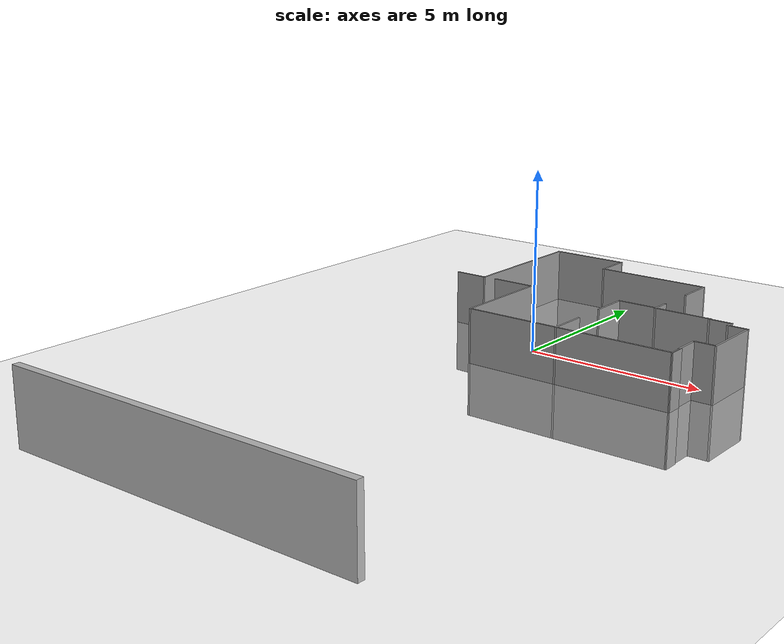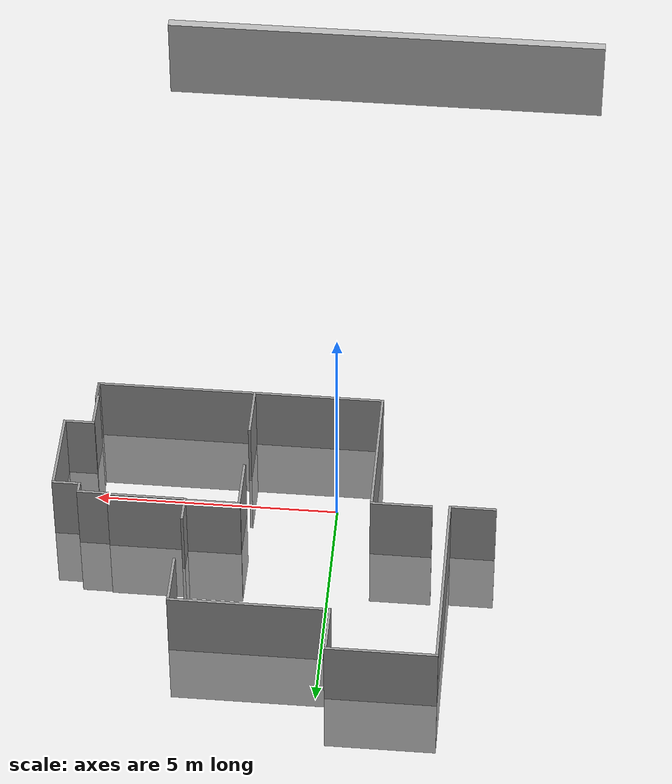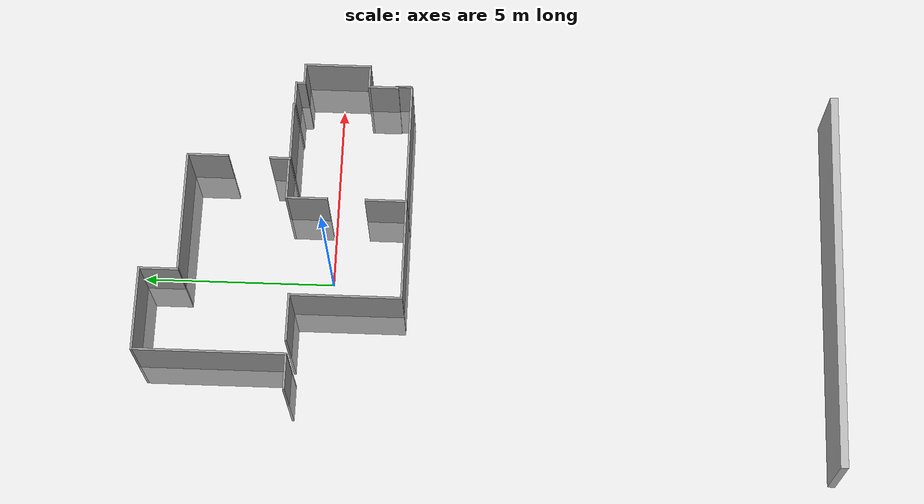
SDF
<sdf version="1.4">
 <world name="default">
  <physics type="ode">
   <gravity>0 0 -9.81</gravity>
   <ode>
    <solver><type>quick</type><iters>20</iters><sor>1</sor></solver>
    <constraints>
     <cfm>0</cfm>
     <erp>0.2</erp>
     <contact_max_correcting_vel>100</contact_max_correcting_vel>
     <contact_surface_layer>0</contact_surface_layer>
    </constraints>
   </ode>
   <real_time_update_rate>1000</real_time_update_rate>
   <max_step_size>0.001</max_step_size>
   <real_time_factor>1</real_time_factor>
   <max_contacts>20</max_contacts>
  </physics>
  <light name="sun" type="directional">
   <pose>0 0 10 0 -0 0</pose>
   <diffuse>0.8 0.8 0.8 1</diffuse>
   <specular>0.2 0.2 0.2 1</specular>
   <attenuation>
    <range>1000</range>
    <constant>0.9</constant>
    <linear>0.01</linear>
    <quadratic>0.001</quadratic>
   </attenuation>
   <direction>0.5 0.1 -0.9</direction>
  </light>
  <model name="ground_plane">
   <static>1</static>
   <link name="link">
    <collision name="collision">
     <geometry><plane><normal>0 0 1</normal><size>100 100</size></plane></geometry>
     <surface><friction><ode><mu>100</mu><mu2>50</mu2></ode></friction></surface>
    </collision>
    <visual name="visual">
     <cast_shadows>0</cast_shadows>
     <geometry><plane><normal>0 0 1</normal><size>100 100</size></plane></geometry>
     <material>
      <script><uri>file://media/materials/scripts/gazebo.material</uri><name>Gazebo/Grey</name></script>
     </material>
    </visual>
    <velocity_decay><linear>0</linear><angular>0</angular></velocity_decay>
   </link>
  </model>
  <model name="wall_1_model">
   <pose>0 -13 1 0 -0 0</pose>
   <static>1</static>
   <link name="wall_1_body">
    <collision name="collision"><geometry><box><size>10 0.2 2</size></box></geometry></collision>
    <visual name="visual"><geometry><box><size>10 0.2 2</size></box></geometry></visual>
    <velocity_decay><linear>0</linear><angular>0</angular></velocity_decay>
   </link>
  </model>
  <model name="wall_3_model">
   <pose>-5 -5.5 1 0 -0 0</pose>
   <static>1</static>
   <link name="wall_3_body"><velocity_decay><linear>0</linear><angular>0</angular></velocity_decay></link>
  </model>
  <scene><ambient>0.4 0.4 0.4 1</ambient><background>0.7 0.7 0.7 1</background><shadows>1</shadows></scene>
  <spherical_coordinates>
   <surface_model>EARTH_WGS84</surface_model>
   <latitude_deg>0</latitude_deg>
   <longitude_deg>0</longitude_deg>
   <elevation>0</elevation>
   <heading_deg>0</heading_deg>
  </spherical_coordinates>
  <model name="RockinCamp">
   <static>1</static>
   <link name="Wall_0">
    <collision name="Wall_0_Collision">
     <geometry><box><size>2.241 0.054 3</size></box></geometry>
     <pose>2.2005 -0.054 0 0 -0 0</pose>
    </collision>
    <visual name="Wall_0_Visual">
     <geometry><box><size>2.241 0.054 3</size></box></geometry>
     <material>
      <script><uri>file://media/materials/scripts/gazebo.material</uri><name>Gazebo/Grey</name></script>
     </material>
     <pose>2.2005 -0.054 0 0 -0 0</pose>
    </visual>
    <velocity_decay><linear>0</linear><angular>0</angular></velocity_decay>
   </link>
   <link name="Wall_1">
    <collision name="Wall_1_Collision">
     <geometry><box><size>0.054 3.942 3</size></box></geometry>
     <pose>1.107 -2.052 0 0 -0 0</pose>
    </collision>
    <visual name="Wall_1_Visual">
     <geometry><box><size>0.054 3.942 3</size></box></geometry>
     <material>
      <script><uri>file://media/materials/scripts/gazebo.material</uri><name>Gazebo/Grey</name></script>
     </material>
     <pose>1.107 -2.052 0 0 -0 0</pose>
    </visual>
    <velocity_decay><linear>0</linear><angular>0</angular></velocity_decay>
   </link>
   <link name="Wall_2">
    <collision name="Wall_2_Collision">
     <geometry><box><size>0.054 0.999 3</size></box></geometry>
     <pose>3.294 -0.5805 0 0 -0 0</pose>
    </collision>
    <visual name="Wall_2_Visual">
     <geometry><box><size>0.054 0.999 3</size></box></geometry>
     <material>
      <script><uri>file://media/materials/scripts/gazebo.material</uri><name>Gazebo/Grey</name></script>
     </material>
     <pose>3.294 -0.5805 0 0 -0 0</pose>
    </visual>
    <velocity_decay><linear>0</linear><angular>0</angular></velocity_decay>
   </link>
   <link name="Wall_3">
    <collision name="Wall_3_Collision">
     <geometry><box><size>3.213 0.054 3</size></box></geometry>
     <pose>4.9275 -1.053 0 0 -0 0</pose>
    </collision>
    <visual name="Wall_3_Visual">
     <geometry><box><size>3.213 0.054 3</size></box></geometry>
     <material>
      <script><uri>file://media/materials/scripts/gazebo.material</uri><name>Gazebo/Grey</name></script>
     </material>
     <pose>4.9275 -1.053 0 0 -0 0</pose>
    </visual>
    <velocity_decay><linear>0</linear><angular>0</angular></velocity_decay>
   </link>
   <link name="Wall_4">
    <collision name="Wall_4_Collision">
     <geometry><box><size>0.054 1.053 3</size></box></geometry>
     <pose>6.507 -1.6065 0 0 -0 0</pose>
    </collision>
    <visual name="Wall_4_Visual">
     <geometry><box><size>0.054 1.053 3</size></box></geometry>
     <material>
      <script><uri>file://media/materials/scripts/gazebo.material</uri><name>Gazebo/Grey</name></script>
     </material>
     <pose>6.507 -1.6065 0 0 -0 0</pose>
    </visual>
    <velocity_decay><linear>0</linear><angular>0</angular></velocity_decay>
   </link>
   <link name="Wall_5">
    <collision name="Wall_5_Collision">
     <geometry><box><size>0.054 0.567 3</size></box></geometry>
     <pose>6.48 -3.4965 0 0 -0 0</pose>
    </collision>
    <visual name="Wall_5_Visual">
     <geometry><box><size>0.054 0.567 3</size></box></geometry>
     <material>
      <script><uri>file://media/materials/scripts/gazebo.material</uri><name>Gazebo/Grey</name></script>
     </material>
     <pose>6.48 -3.4965 0 0 -0 0</pose>
    </visual>
    <velocity_decay><linear>0</linear><angular>0</angular></velocity_decay>
   </link>
   <link name="Wall_6">
    <collision name="Wall_6_Collision">
     <geometry><box><size>1.107 0.054 3</size></box></geometry>
     <pose>5.8995 -3.726 0 0 -0 0</pose>
    </collision>
    <visual name="Wall_6_Visual">
     <geometry><box><size>1.107 0.054 3</size></box></geometry>
     <material>
      <script><uri>file://media/materials/scripts/gazebo.material</uri><name>Gazebo/Grey</name></script>
     </material>
     <pose>5.8995 -3.726 0 0 -0 0</pose>
    </visual>
    <velocity_decay><linear>0</linear><angular>0</angular></velocity_decay>
   </link>
   <link name="Wall_7">
    <collision name="Wall_7_Collision">
     <geometry><box><size>1.566 0.054 3</size></box></geometry>
     <pose>7.29 -3.753 0 0 -0 0</pose>
    </collision>
    <visual name="Wall_7_Visual">
     <geometry><box><size>1.566 0.054 3</size></box></geometry>
     <material>
      <script><uri>file://media/materials/scripts/gazebo.material</uri><name>Gazebo/Grey</name></script>
     </material>
     <pose>7.29 -3.753 0 0 -0 0</pose>
    </visual>
    <velocity_decay><linear>0</linear><angular>0</angular></velocity_decay>
   </link>
   <link name="Wall_8">
    <collision name="Wall_8_Collision">
     <geometry><box><size>0.054 1.053 3</size></box></geometry>
     <pose>5.373 -4.2795 0 0 -0 0</pose>
    </collision>
    <visual name="Wall_8_Visual">
     <geometry><box><size>0.054 1.053 3</size></box></geometry>
     <material>
      <script><uri>file://media/materials/scripts/gazebo.material</uri><name>Gazebo/Grey</name></script>
     </material>
     <pose>5.373 -4.2795 0 0 -0 0</pose>
    </visual>
    <velocity_decay><linear>0</linear><angular>0</angular></velocity_decay>
   </link>
   <link name="Wall_9">
    <collision name="Wall_9_Collision">
     <geometry><box><size>0.621 0.054 3</size></box></geometry>
     <pose>8.3835 -3.78 0 0 -0 0</pose>
    </collision>
    <visual name="Wall_9_Visual">
     <geometry><box><size>0.621 0.054 3</size></box></geometry>
     <material>
      <script><uri>file://media/materials/scripts/gazebo.material</uri><name>Gazebo/Grey</name></script>
     </material>
     <pose>8.3835 -3.78 0 0 -0 0</pose>
    </visual>
    <velocity_decay><linear>0</linear><angular>0</angular></velocity_decay>
   </link>
   <link name="Wall_10">
    <collision name="Wall_10_Collision">
     <geometry><box><size>0.054 0.027 3</size></box></geometry>
     <pose>8.046 -3.7935 0 0 -0 0</pose>
    </collision>
    <visual name="Wall_10_Visual">
     <geometry><box><size>0.054 0.027 3</size></box></geometry>
     <material>
      <script><uri>file://media/materials/scripts/gazebo.material</uri><name>Gazebo/Grey</name></script>
     </material>
     <pose>8.046 -3.7935 0 0 -0 0</pose>
    </visual>
    <velocity_decay><linear>0</linear><angular>0</angular></velocity_decay>
   </link>
   <link name="Wall_11">
    <collision name="Wall_11_Collision">
     <geometry><box><size>0.054 0.216 3</size></box></geometry>
     <pose>8.667 -3.915 0 0 -0 0</pose>
    </collision>
    <visual name="Wall_11_Visual">
     <geometry><box><size>0.054 0.216 3</size></box></geometry>
     <material>
      <script><uri>file://media/materials/scripts/gazebo.material</uri><name>Gazebo/Grey</name></script>
     </material>
     <pose>8.667 -3.915 0 0 -0 0</pose>
    </visual>
    <velocity_decay><linear>0</linear><angular>0</angular></velocity_decay>
   </link>
   <link name="Wall_12">
    <collision name="Wall_12_Collision">
     <geometry><box><size>1.269 0.054 3</size></box></geometry>
     <pose>2.0925 -3.969 0 0 -0 0</pose>
    </collision>
    <visual name="Wall_12_Visual">
     <geometry><box><size>1.269 0.054 3</size></box></geometry>
     <material>
      <script><uri>file://media/materials/scripts/gazebo.material</uri><name>Gazebo/Grey</name></script>
     </material>
     <pose>2.0925 -3.969 0 0 -0 0</pose>
    </visual>
    <velocity_decay><linear>0</linear><angular>0</angular></velocity_decay>
   </link>
   <link name="Wall_13">
    <collision name="Wall_13_Collision">
     <geometry><box><size>0.918 0.054 3</size></box></geometry>
     <pose>0.621 -3.996 0 0 -0 0</pose>
    </collision>
    <visual name="Wall_13_Visual">
     <geometry><box><size>0.918 0.054 3</size></box></geometry>
     <material>
      <script><uri>file://media/materials/scripts/gazebo.material</uri><name>Gazebo/Grey</name></script>
     </material>
     <pose>0.621 -3.996 0 0 -0 0</pose>
    </visual>
    <velocity_decay><linear>0</linear><angular>0</angular></velocity_decay>
   </link>
   <link name="Wall_14">
    <collision name="Wall_14_Collision">
     <geometry><box><size>0.54 0.054 3</size></box></geometry>
     <pose>8.964 -3.996 0 0 -0 0</pose>
    </collision>
    <visual name="Wall_14_Visual">
     <geometry><box><size>0.54 0.054 3</size></box></geometry>
     <material>
      <script><uri>file://media/materials/scripts/gazebo.material</uri><name>Gazebo/Grey</name></script>
     </material>
     <pose>8.964 -3.996 0 0 -0 0</pose>
    </visual>
    <velocity_decay><linear>0</linear><angular>0</angular></velocity_decay>
   </link>
   <link name="Wall_15">
    <collision name="Wall_15_Collision">
     <geometry><box><size>0.054 2.889 3</size></box></geometry>
     <pose>2.7 -5.4405 0 0 -0 0</pose>
    </collision>
    <visual name="Wall_15_Visual">
     <geometry><box><size>0.054 2.889 3</size></box></geometry>
     <material>
      <script><uri>file://media/materials/scripts/gazebo.material</uri><name>Gazebo/Grey</name></script>
     </material>
     <pose>2.7 -5.4405 0 0 -0 0</pose>
    </visual>
    <velocity_decay><linear>0</linear><angular>0</angular></velocity_decay>
   </link>
   <link name="Wall_16">
    <collision name="Wall_16_Collision">
     <geometry><box><size>0.054 1.728 3</size></box></geometry>
     <pose>9.207 -4.887 0 0 -0 0</pose>
    </collision>
    <visual name="Wall_16_Visual">
     <geometry><box><size>0.054 1.728 3</size></box></geometry>
     <material>
      <script><uri>file://media/materials/scripts/gazebo.material</uri><name>Gazebo/Grey</name></script>
     </material>
     <pose>9.207 -4.887 0 0 -0 0</pose>
    </visual>
    <velocity_decay><linear>0</linear><angular>0</angular></velocity_decay>
   </link>
   <link name="Wall_17">
    <collision name="Wall_17_Collision">
     <geometry><box><size>0.594 0.054 3</size></box></geometry>
     <pose>8.883 -5.724 0 0 -0 0</pose>
    </collision>
    <visual name="Wall_17_Visual">
     <geometry><box><size>0.594 0.054 3</size></box></geometry>
     <material>
      <script><uri>file://media/materials/scripts/gazebo.material</uri><name>Gazebo/Grey</name></script>
     </material>
     <pose>8.883 -5.724 0 0 -0 0</pose>
    </visual>
    <velocity_decay><linear>0</linear><angular>0</angular></velocity_decay>
   </link>
   <link name="Wall_18">
    <collision name="Wall_18_Collision">
     <geometry><box><size>0.054 0.756 3</size></box></geometry>
     <pose>8.613 -6.129 0 0 -0 0</pose>
    </collision>
    <visual name="Wall_18_Visual">
     <geometry><box><size>0.054 0.756 3</size></box></geometry>
     <material>
      <script><uri>file://media/materials/scripts/gazebo.material</uri><name>Gazebo/Grey</name></script>
     </material>
     <pose>8.613 -6.129 0 0 -0 0</pose>
    </visual>
    <velocity_decay><linear>0</linear><angular>0</angular></velocity_decay>
   </link>
   <link name="Wall_19">
    <collision name="Wall_19_Collision">
     <geometry><box><size>0.054 1.107 3</size></box></geometry>
     <pose>5.373 -6.3315 0 0 -0 0</pose>
    </collision>
    <visual name="Wall_19_Visual">
     <geometry><box><size>0.054 1.107 3</size></box></geometry>
     <material>
      <script><uri>file://media/materials/scripts/gazebo.material</uri><name>Gazebo/Grey</name></script>
     </material>
     <pose>5.373 -6.3315 0 0 -0 0</pose>
    </visual>
    <velocity_decay><linear>0</linear><angular>0</angular></velocity_decay>
   </link>
   <link name="Wall_20">
    <collision name="Wall_20_Collision">
     <geometry><box><size>0.027 0.459 3</size></box></geometry>
     <pose>8.6535 -6.6555 0 0 -0 0</pose>
    </collision>
    <visual name="Wall_20_Visual">
     <geometry><box><size>0.027 0.459 3</size></box></geometry>
     <material>
      <script><uri>file://media/materials/scripts/gazebo.material</uri><name>Gazebo/Grey</name></script>
     </material>
     <pose>8.6535 -6.6555 0 0 -0 0</pose>
    </visual>
    <velocity_decay><linear>0</linear><angular>0</angular></velocity_decay>
   </link>
   <link name="Wall_21">
    <collision name="Wall_21_Collision">
     <geometry><box><size>0.027 0.378 3</size></box></geometry>
     <pose>8.6265 -6.696 0 0 -0 0</pose>
    </collision>
    <visual name="Wall_21_Visual">
     <geometry><box><size>0.027 0.378 3</size></box></geometry>
     <material>
      <script><uri>file://media/materials/scripts/gazebo.material</uri><name>Gazebo/Grey</name></script>
     </material>
     <pose>8.6265 -6.696 0 0 -0 0</pose>
    </visual>
    <velocity_decay><linear>0</linear><angular>0</angular></velocity_decay>
   </link>
   <link name="Wall_22">
    <collision name="Wall_22_Collision">
     <geometry><box><size>2.619 0.054 3</size></box></geometry>
     <pose>4.0365 -6.858 0 0 -0 0</pose>
    </collision>
    <visual name="Wall_22_Visual">
     <geometry><box><size>2.619 0.054 3</size></box></geometry>
     <material>
      <script><uri>file://media/materials/scripts/gazebo.material</uri><name>Gazebo/Grey</name></script>
     </material>
     <pose>4.0365 -6.858 0 0 -0 0</pose>
    </visual>
    <velocity_decay><linear>0</linear><angular>0</angular></velocity_decay>
   </link>
   <link name="Wall_23">
    <collision name="Wall_23_Collision">
     <geometry><box><size>3.213 0.054 3</size></box></geometry>
     <pose>7.0065 -6.858 0 0 -0 0</pose>
    </collision>
    <visual name="Wall_23_Visual">
     <geometry><box><size>3.213 0.054 3</size></box></geometry>
     <material>
      <script><uri>file://media/materials/scripts/gazebo.material</uri><name>Gazebo/Grey</name></script>
     </material>
     <pose>7.0065 -6.858 0 0 -0 0</pose>
    </visual>
    <velocity_decay><linear>0</linear><angular>0</angular></velocity_decay>
   </link>
   <pose>-3.48769 5 0 0 -0 0</pose>
  </model>
 </world>
</sdf>
